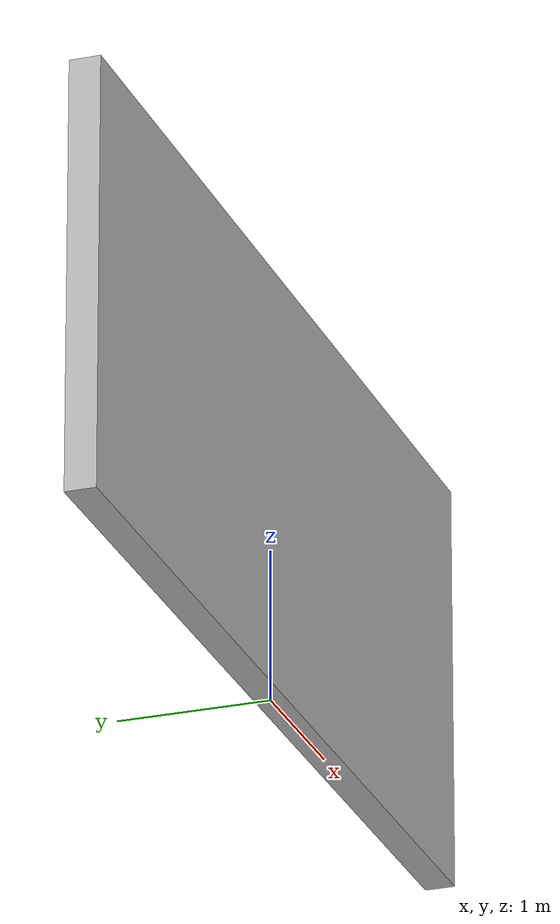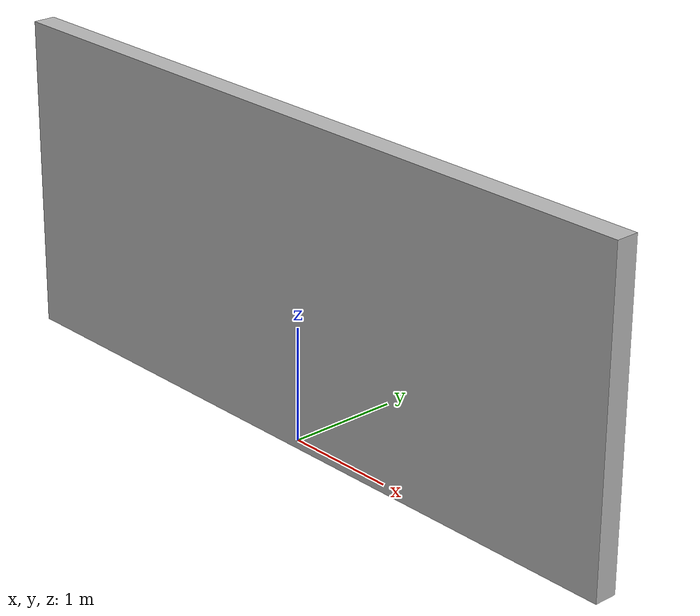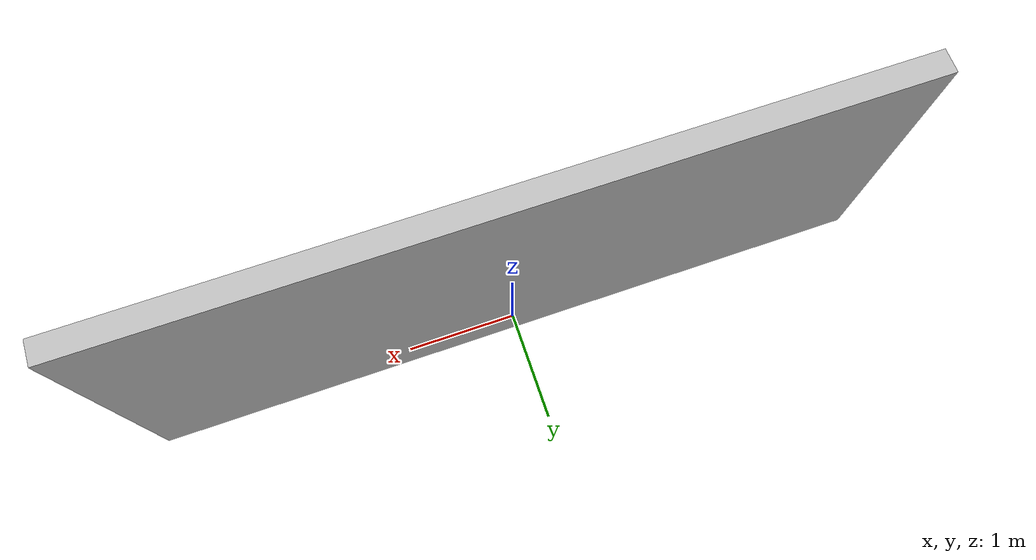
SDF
<?xml version="1.0" ?>
<sdf version="1.4">
  <model name="new_wall">
    <static>true</static>
    <link name="link">
      <pose>0 0 1.4 0 0 0</pose>
      <collision name="collision">
        <geometry>
          <box>
            <size>6.6 0.2 2.8</size>
          </box>
        </geometry>
      </collision>
      <visual name="visual">
        <cast_shadows>false</cast_shadows>
        <geometry>
          <box>
            <size>6.6 0.2 2.8</size>
          </box>
        </geometry>
        <material>
          <script>
            <uri>model://new_wall/materials/scripts</uri>
            <uri>model://new_wall/materials/textures</uri>
            <name>vrc/new_wall_brick</name>
          </script>
        </material>
      </visual>
    </link>
  </model>
</sdf>
